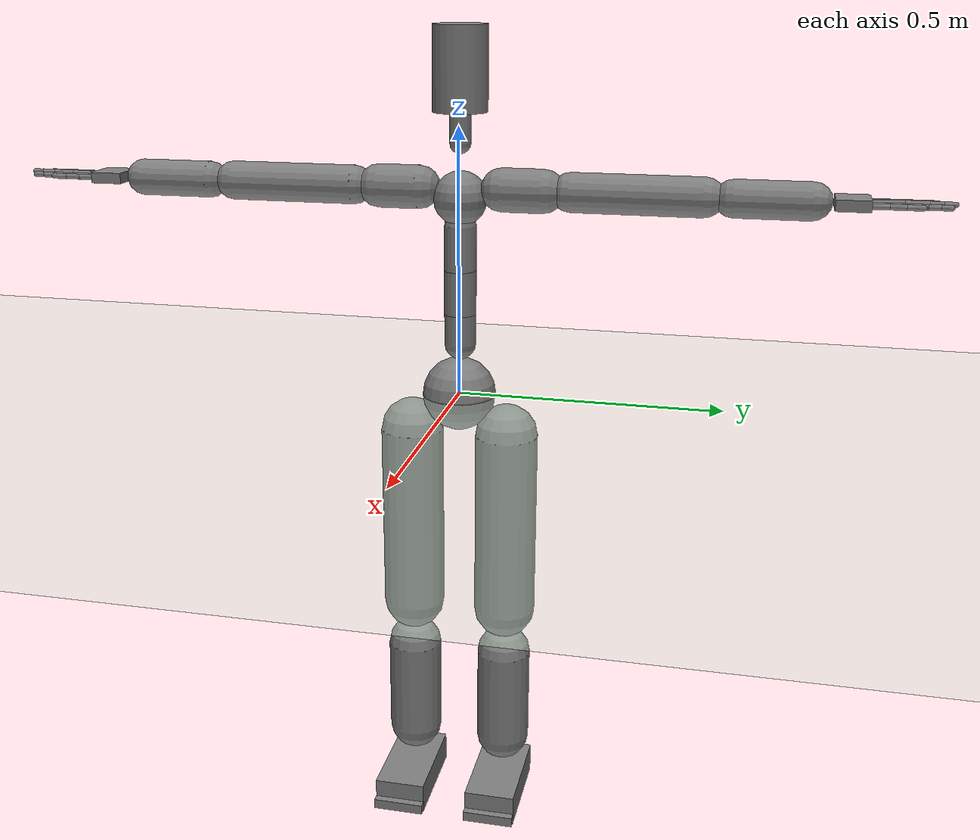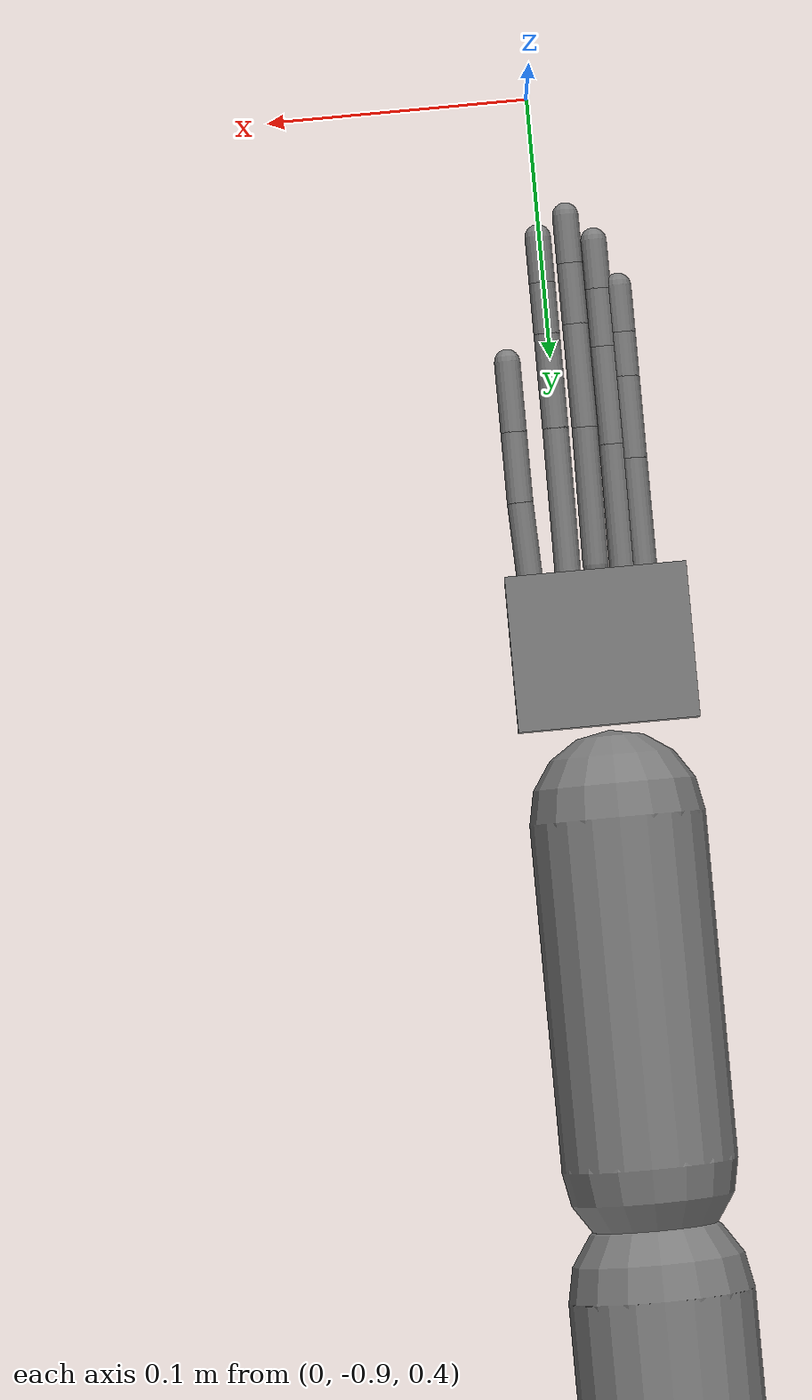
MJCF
<!-- change the damping from 50 to 500 -->
<mujoco model="humanoid">
  <compiler coordinate="local"/>
  <statistic extent="2" center="0 0 1"/>
  <option timestep="0.00555"/>
  <default>
    <motor ctrlrange="-1 1" ctrllimited="true"/>
    <geom type="capsule" condim="1" friction="1.0 0.05 0.05" solimp=".9 .99 .003" solref=".015 1"/>
    <joint type="hinge" damping="0.1" stiffness="5" armature=".007" limited="true" solimplimit="0 .99 .01"/>
    <site size=".04" group="3"/>
    <default class="force-torque">
      <site type="box" size=".01 .01 .02" rgba="1 0 0 1"/>
    </default>
    <default class="touch">
      <site type="capsule" rgba="0 0 1 .3"/>
    </default>
  </default>
  <asset>
    <texture type="skybox" builtin="gradient" rgb1=".4 .5 .6" rgb2="0 0 0" width="100" height="100"/>
    <texture builtin="flat" height="1278" mark="cross" markrgb="1 1 1" name="texgeom" random="0.01" rgb1="0.8 0.6 0.4" rgb2="0.8 0.6 0.4" type="cube" width="127"/>
    <texture builtin="checker" height="100" name="texplane" rgb1="0 0 0" rgb2="0.8 0.8 0.8" type="2d" width="100"/>
    <material name="MatPlane" reflectance="0.5" shininess="1" specular="1" texrepeat="60 60" texture="texplane"/>
    <material name="geom" texture="texgeom" texuniform="true"/>
  </asset>
  <worldbody>
    <light cutoff="100" diffuse="1 1 1" dir="-0 0 -1.3" directional="true" exponent="1" pos="0 0 1.3" specular=".1 .1 .1"/>
    <geom conaffinity="1" condim="3" name="floor" pos="0 0 0" rgba="0.8 0.9 0.8 1" size="100 100 .2" type="plane" material="MatPlane"/>
    <body name="pHipOrigin" pos="0 0 0">
      <freejoint name="pHipOrigin"/>
      <geom type="sphere" contype="1" conaffinity="1" density="4629.6296296296305" size="0.07011" pos="0.0000 0.0000 -0.0000"/>
      <body name="jL5S1" pos="-0.008516421404465561 0.0 0.0766475765284283">
        <geom type="capsule" contype="1" conaffinity="1" density="1000" fromto="0 0 0.02 0.0 0.0 0.07755035161972046" size="0.03"/>
        <joint name="jL5S1_x" type="hinge" pos="0 0 0" axis="1 0 0" stiffness="500" damping="500" armature="0.02" range="-180.0000 180.0000"/>
        <joint name="jL5S1_y" type="hinge" pos="0 0 0" axis="0 1 0" stiffness="500" damping="500" armature="0.02" range="-180.0000 180.0000"/>
        <joint name="jL5S1_z" type="hinge" pos="0 0 0" axis="0 0 1" stiffness="500" damping="500" armature="0.02" range="-180.0000 180.0000"/>
        <body name="jL4L3" pos="0.0 0.0 0.07755035161972046">
          <geom type="capsule" contype="1" conaffinity="1" density="1000" fromto="0 0 0 -0.0006374194169280187 0.0 0.08262085664436475" size="0.03"/>
          <joint name="jL4L3_x" type="hinge" pos="0 0 0" axis="1 0 0" stiffness="500" damping="500" armature="0.02" range="-180.0000 180.0000"/>
          <joint name="jL4L3_y" type="hinge" pos="0 0 0" axis="0 1 0" stiffness="500" damping="500" armature="0.02" range="-180.0000 180.0000"/>
          <joint name="jL4L3_z" type="hinge" pos="0 0 0" axis="0 0 1" stiffness="500" damping="500" armature="0.02" range="-180.0000 180.0000"/>
          <body name="jL1T12" pos="-0.0006374194169280187 0.0 0.08262085664436475">
            <geom type="capsule" contype="1" conaffinity="1" density="1000" fromto="0 0 0 -0.0006464134105831213 0.0 0.08362376992082679" size="0.03"/>
            <joint name="jL1T12_x" type="hinge" pos="0 0 0" axis="1 0 0" stiffness="500" damping="500" armature="0.02" range="-180.0000 180.0000"/>
            <joint name="jL1T12_y" type="hinge" pos="0 0 0" axis="0 1 0" stiffness="500" damping="500" armature="0.02" range="-180.0000 180.0000"/>
            <joint name="jL1T12_z" type="hinge" pos="0 0 0" axis="0 0 1" stiffness="500" damping="500" armature="0.02" range="-180.0000 180.0000"/>
            <body name="jT9T8" pos="-0.0006464134105831213 0.0 0.08362376992082679">
              <geom type="sphere" contype="1" conaffinity="1" density="1000" size="0.05011" pos="0.0000 0.0000 0.050000"/>
              <joint name="jT9T8_x" type="hinge" pos="0 0 0" axis="1 0 0" stiffness="500" damping="500" armature="0.02" range="-180.0000 180.0000"/>
              <joint name="jT9T8_y" type="hinge" pos="0 0 0" axis="0 1 0" stiffness="500" damping="500" armature="0.02" range="-180.0000 180.0000"/>
              <joint name="jT9T8_z" type="hinge" pos="0 0 0" axis="0 0 1" stiffness="500" damping="500" armature="0.02" range="-180.0000 180.0000"/>
              <body name="jT1C7" pos="0.0 0.0 0.11981400847434998">
                <geom type="capsule" contype="1" conaffinity="1" density="1000" fromto="0 0 0.03 0.000993035624965301 0.0 0.08417254270113383" size="0.02"/>
                <joint name="jT1C7_x" type="hinge" pos="0 0 0" axis="1 0 0" stiffness="500" damping="500" armature="0.02" range="-180.0000 180.0000"/>
                <joint name="jT1C7_y" type="hinge" pos="0 0 0" axis="0 1 0" stiffness="500" damping="500" armature="0.02" range="-180.0000 180.0000"/>
                <joint name="jT1C7_z" type="hinge" pos="0 0 0" axis="0 0 1" stiffness="500" damping="500" armature="0.02" range="-180.0000 180.0000"/>
                <body name="jC1Head" pos="0.000993035624965301 0.0 0.08417254270113383">
                  <geom type="cylinder" contype="1" conaffinity="1" density="1000" fromto="0 0 0 0 0 0.15" size="0.05"/>
                  <joint name="jC1Head_x" type="hinge" pos="0 0 0" axis="1 0 0" stiffness="500" damping="500" armature="0.02" range="-180.0000 180.0000"/>
                  <joint name="jC1Head_y" type="hinge" pos="0 0 0" axis="0 1 0" stiffness="500" damping="500" armature="0.02" range="-180.0000 180.0000"/>
                  <joint name="jC1Head_z" type="hinge" pos="0 0 0" axis="0 0 1" stiffness="500" damping="500" armature="0.02" range="-180.0000 180.0000"/>
                </body>
              </body>
              <body name="jRightT4Shoulder" pos="0.0 -0.027939024825593555 0.0681214746452578">
                <geom type="capsule" contype="1" conaffinity="1" density="1000" fromto="0 -0.05 0 0.0 -0.12468250095844269 0.0" size="0.04"/>
                <joint name="jRightT4Shoulder_x" type="hinge" pos="0 0 0" axis="1 0 0" stiffness="500" damping="500" armature="0.02" range="-180.0000 180.0000"/>
                <joint name="jRightT4Shoulder_y" type="hinge" pos="0 0 0" axis="0 1 0" stiffness="500" damping="500" armature="0.02" range="-180.0000 180.0000"/>
                <joint name="jRightT4Shoulder_z" type="hinge" pos="0 0 0" axis="0 0 1" stiffness="500" damping="500" armature="0.02" range="-180.0000 180.0000"/>
                <body name="jRightShoulder" pos="0.0 -0.12468250095844269 0.0">
                  <geom type="capsule" contype="1" conaffinity="1" density="1000" fromto="0 -0.05 0 0.0 -0.28514769673347473 0.0" size="0.036"/>
                  <joint name="jRightShoulder_x" type="hinge" pos="0 0 0" axis="1 0 0" stiffness="500" damping="500" armature="0.02" range="-180.0000 180.0000"/>
                  <joint name="jRightShoulder_y" type="hinge" pos="0 0 0" axis="0 1 0" stiffness="500" damping="500" armature="0.02" range="-180.0000 180.0000"/>
                  <joint name="jRightShoulder_z" type="hinge" pos="0 0 0" axis="0 0 1" stiffness="500" damping="500" armature="0.02" range="-180.0000 180.0000"/>
                  <body name="jRightElbow" pos="0.0 -0.28514769673347473 0.0">
                    <geom type="capsule" contype="1" conaffinity="1" density="1000" fromto="0 -0.05 0 0.00010069218417944148 -0.18417896837208908 0.0" size="0.034"/>
                    <joint name="jRightElbow_x" type="hinge" pos="0 0 0" axis="1 0 0" stiffness="500" damping="500" armature="0.02" range="-180.0000 180.0000"/>
                    <joint name="jRightElbow_y" type="hinge" pos="0 0 0" axis="0 1 0" stiffness="500" damping="500" armature="0.02" range="-180.0000 180.0000"/>
                    <joint name="jRightElbow_z" type="hinge" pos="0 0 0" axis="0 0 1" stiffness="500" damping="500" armature="0.02" range="-180.0000 180.0000"/>
                    <body name="jRightWrist" pos="0.00010069218417944148 -0.2501789683720891 0.0">
                      <geom density="1000" type="box" pos="0 0 0" size="0.035 0.03 0.01" quat="1.0 0 0 0"/>
                      <joint name="jRightWrist_x" type="hinge" pos="0 0 0" axis="1 0 0" stiffness="500" damping="500" armature="0.02" range="-180.0000 180.0000"/>
                      <joint name="jRightWrist_y" type="hinge" pos="0 0 0" axis="0 1 0" stiffness="500" damping="500" armature="0.02" range="-180.0000 180.0000"/>
                      <joint name="jRightWrist_z" type="hinge" pos="0 0 0" axis="0 0 1" stiffness="500" damping="500" armature="0.02" range="-180.0000 180.0000"/>
                      <body name="jRightFirstCMC" pos="0.025017587 -0.023980761 -0.0011329494">
                        <geom type="capsule" contype="1" conaffinity="1" density="1000" fromto="0 0 0 0.0012190858833491802 -0.034401796758174896 0.0007269077468663454" size="0.005"/>
                        <joint name="jRightFirstCMC_x" type="hinge" pos="0 0 0" axis="1 0 0" stiffness="500" damping="500" armature="0.02" range="-180.0000 180.0000"/>
                        <joint name="jRightFirstCMC_y" type="hinge" pos="0 0 0" axis="0 1 0" stiffness="500" damping="500" armature="0.02" range="-180.0000 180.0000"/>
                        <joint name="jRightFirstCMC_z" type="hinge" pos="0 0 0" axis="0 0 1" stiffness="500" damping="500" armature="0.02" range="-180.0000 180.0000"/>
                        <body name="jRightFirstMCP" pos="0.0012190859 -0.034401797 0.00072690775">
                          <geom type="capsule" contype="1" conaffinity="1" density="1000" fromto="0 0 0 0.0 -0.027401529252529144 0.0" size="0.005"/>
                          <joint name="jRightFirstMCP_x" type="hinge" pos="0 0 0" axis="1 0 0" stiffness="500" damping="500" armature="0.02" range="-180.0000 180.0000"/>
                          <joint name="jRightFirstMCP_y" type="hinge" pos="0 0 0" axis="0 1 0" stiffness="500" damping="500" armature="0.02" range="-180.0000 180.0000"/>
                          <joint name="jRightFirstMCP_z" type="hinge" pos="0 0 0" axis="0 0 1" stiffness="500" damping="500" armature="0.02" range="-180.0000 180.0000"/>
                          <body name="jRightIP" pos="0.0 -0.02740153 0.0">
                            <geom type="capsule" contype="1" conaffinity="1" density="1000" fromto="0 0 0 0.0 -0.027419358491897583 0.0" size="0.005"/>
                            <joint name="jRightIP_x" type="hinge" pos="0 0 0" axis="1 0 0" stiffness="500" damping="500" armature="0.02" range="-180.0000 180.0000"/>
                            <joint name="jRightIP_y" type="hinge" pos="0 0 0" axis="0 1 0" stiffness="500" damping="500" armature="0.02" range="-180.0000 180.0000"/>
                            <joint name="jRightIP_z" type="hinge" pos="0 0 0" axis="0 0 1" stiffness="500" damping="500" armature="0.02" range="-180.0000 180.0000"/>
                          </body>
                        </body>
                      </body>
                      <body name="jRightSecondCMC" pos="0.010381387 -0.030331125 -0.00052904844">
                        <geom type="capsule" contype="1" conaffinity="1" density="1000" fromto="0 0 0 -0.00034841737942770123 -0.055569957941770554 -0.0005764446686953306" size="0.005"/>
                        <joint name="jRightSecondCMC_x" type="hinge" pos="0 0 0" axis="1 0 0" stiffness="500" damping="500" armature="0.02" range="-180.0000 180.0000"/>
                        <joint name="jRightSecondCMC_y" type="hinge" pos="0 0 0" axis="0 1 0" stiffness="500" damping="500" armature="0.02" range="-180.0000 180.0000"/>
                        <joint name="jRightSecondCMC_z" type="hinge" pos="0 0 0" axis="0 0 1" stiffness="500" damping="500" armature="0.02" range="-180.0000 180.0000"/>
                        <body name="jRightSecondMCP" pos="-0.00034841738 -0.055569958 -0.00057644467">
                          <geom type="capsule" contype="1" conaffinity="1" density="1000" fromto="0 0 0 0.0 -0.03668946027755737 0.0" size="0.005"/>
                          <joint name="jRightSecondMCP_x" type="hinge" pos="0 0 0" axis="1 0 0" stiffness="500" damping="500" armature="0.02" range="-180.0000 180.0000"/>
                          <joint name="jRightSecondMCP_y" type="hinge" pos="0 0 0" axis="0 1 0" stiffness="500" damping="500" armature="0.02" range="-180.0000 180.0000"/>
                          <joint name="jRightSecondMCP_z" type="hinge" pos="0 0 0" axis="0 0 1" stiffness="500" damping="500" armature="0.02" range="-180.0000 180.0000"/>
                          <body name="jRightSecondPIP" pos="0.0 -0.03668946 0.0">
                            <geom type="capsule" contype="1" conaffinity="1" density="1000" fromto="0 0 0 0.0 -0.019924849271774292 0.0" size="0.005"/>
                            <joint name="jRightSecondPIP_x" type="hinge" pos="0 0 0" axis="1 0 0" stiffness="500" damping="500" armature="0.02" range="-180.0000 180.0000"/>
                            <joint name="jRightSecondPIP_y" type="hinge" pos="0 0 0" axis="0 1 0" stiffness="500" damping="500" armature="0.02" range="-180.0000 180.0000"/>
                            <joint name="jRightSecondPIP_z" type="hinge" pos="0 0 0" axis="0 0 1" stiffness="500" damping="500" armature="0.02" range="-180.0000 180.0000"/>
                            <body name="jRightSecondDIP" pos="0.0 -0.01992485 0.0">
                              <geom type="capsule" contype="1" conaffinity="1" density="1000" fromto="0 0 0 0.0 -0.017852455377578735 0.0" size="0.005"/>
                              <joint name="jRightSecondDIP_x" type="hinge" pos="0 0 0" axis="1 0 0" stiffness="500" damping="500" armature="0.02" range="-180.0000 180.0000"/>
                              <joint name="jRightSecondDIP_y" type="hinge" pos="0 0 0" axis="0 1 0" stiffness="500" damping="500" armature="0.02" range="-180.0000 180.0000"/>
                              <joint name="jRightSecondDIP_z" type="hinge" pos="0 0 0" axis="0 0 1" stiffness="500" damping="500" armature="0.02" range="-180.0000 180.0000"/>
                            </body>
                          </body>
                        </body>
                      </body>
                      <body name="jRightThirdCMC" pos="-0.00058932963 -0.031869587 0.0013398459">
                        <geom type="capsule" contype="1" conaffinity="1" density="1000" fromto="0 0 0 -0.0006422966835089028 -0.05321437865495682 0.001447758637368679" size="0.005"/>
                        <joint name="jRightThirdCMC_x" type="hinge" pos="0 0 0" axis="1 0 0" stiffness="500" damping="500" armature="0.02" range="-180.0000 180.0000"/>
                        <joint name="jRightThirdCMC_y" type="hinge" pos="0 0 0" axis="0 1 0" stiffness="500" damping="500" armature="0.02" range="-180.0000 180.0000"/>
                        <joint name="jRightThirdCMC_z" type="hinge" pos="0 0 0" axis="0 0 1" stiffness="500" damping="500" armature="0.02" range="-180.0000 180.0000"/>
                        <body name="jRightThirdMCP" pos="-0.0006422967 -0.05321438 0.0014477586">
                          <geom type="capsule" contype="1" conaffinity="1" density="1000" fromto="0 0 0 0.0 -0.039939187467098236 0.0" size="0.005"/>
                          <joint name="jRightThirdMCP_x" type="hinge" pos="0 0 0" axis="1 0 0" stiffness="500" damping="500" armature="0.02" range="-180.0000 180.0000"/>
                          <joint name="jRightThirdMCP_y" type="hinge" pos="0 0 0" axis="0 1 0" stiffness="500" damping="500" armature="0.02" range="-180.0000 180.0000"/>
                          <joint name="jRightThirdMCP_z" type="hinge" pos="0 0 0" axis="0 0 1" stiffness="500" damping="500" armature="0.02" range="-180.0000 180.0000"/>
                          <body name="jRightThirdPIP" pos="0.0 -0.039939187 0.0">
                            <geom type="capsule" contype="1" conaffinity="1" density="1000" fromto="0 0 0 0.0 -0.02361077070236206 0.0" size="0.005"/>
                            <joint name="jRightThirdPIP_x" type="hinge" pos="0 0 0" axis="1 0 0" stiffness="500" damping="500" armature="0.02" range="-180.0000 180.0000"/>
                            <joint name="jRightThirdPIP_y" type="hinge" pos="0 0 0" axis="0 1 0" stiffness="500" damping="500" armature="0.02" range="-180.0000 180.0000"/>
                            <joint name="jRightThirdPIP_z" type="hinge" pos="0 0 0" axis="0 0 1" stiffness="500" damping="500" armature="0.02" range="-180.0000 180.0000"/>
                            <body name="jRightThirdDIP" pos="0.0 -0.02361077 0.0">
                              <geom type="capsule" contype="1" conaffinity="1" density="1000" fromto="0 0 0 0.0 -0.0187528133392334 0.0" size="0.005"/>
                              <joint name="jRightThirdDIP_x" type="hinge" pos="0 0 0" axis="1 0 0" stiffness="500" damping="500" armature="0.02" range="-180.0000 180.0000"/>
                              <joint name="jRightThirdDIP_y" type="hinge" pos="0 0 0" axis="0 1 0" stiffness="500" damping="500" armature="0.02" range="-180.0000 180.0000"/>
                              <joint name="jRightThirdDIP_z" type="hinge" pos="0 0 0" axis="0 0 1" stiffness="500" damping="500" armature="0.02" range="-180.0000 180.0000"/>
                            </body>
                          </body>
                        </body>
                      </body>
                      <body name="jRightFourthCMC" pos="-0.010838733 -0.030187663 0.0007105703">
                        <geom type="capsule" contype="1" conaffinity="1" density="1000" fromto="0 0 0 -0.00034616925404407084 -0.0474458709359169 0.0007454122533090413" size="0.005"/>
                        <joint name="jRightFourthCMC_x" type="hinge" pos="0 0 0" axis="1 0 0" stiffness="500" damping="500" armature="0.02" range="-180.0000 180.0000"/>
                        <joint name="jRightFourthCMC_y" type="hinge" pos="0 0 0" axis="0 1 0" stiffness="500" damping="500" armature="0.02" range="-180.0000 180.0000"/>
                        <joint name="jRightFourthCMC_z" type="hinge" pos="0 0 0" axis="0 0 1" stiffness="500" damping="500" armature="0.02" range="-180.0000 180.0000"/>
                        <body name="jRightFourthMCP" pos="-0.00034616925 -0.04744587 0.00074541225">
                          <geom type="capsule" contype="1" conaffinity="1" density="1000" fromto="0 0 0 0.0 -0.037895575165748596 0.0" size="0.005"/>
                          <joint name="jRightFourthMCP_x" type="hinge" pos="0 0 0" axis="1 0 0" stiffness="500" damping="500" armature="0.02" range="-180.0000 180.0000"/>
                          <joint name="jRightFourthMCP_y" type="hinge" pos="0 0 0" axis="0 1 0" stiffness="500" damping="500" armature="0.02" range="-180.0000 180.0000"/>
                          <joint name="jRightFourthMCP_z" type="hinge" pos="0 0 0" axis="0 0 1" stiffness="500" damping="500" armature="0.02" range="-180.0000 180.0000"/>
                          <body name="jRightFourthPIP" pos="0.0 -0.037895575 0.0">
                            <geom type="capsule" contype="1" conaffinity="1" density="1000" fromto="0 0 0 0.0 -0.022440627217292786 0.0" size="0.005"/>
                            <joint name="jRightFourthPIP_x" type="hinge" pos="0 0 0" axis="1 0 0" stiffness="500" damping="500" armature="0.02" range="-180.0000 180.0000"/>
                            <joint name="jRightFourthPIP_y" type="hinge" pos="0 0 0" axis="0 1 0" stiffness="500" damping="500" armature="0.02" range="-180.0000 180.0000"/>
                            <joint name="jRightFourthPIP_z" type="hinge" pos="0 0 0" axis="0 0 1" stiffness="500" damping="500" armature="0.02" range="-180.0000 180.0000"/>
                            <body name="jRightFourthDIP" pos="0.0 -0.022440627 0.0">
                              <geom type="capsule" contype="1" conaffinity="1" density="1000" fromto="0 0 0 0.0 -0.018935352563858032 0.0" size="0.005"/>
                              <joint name="jRightFourthDIP_x" type="hinge" pos="0 0 0" axis="1 0 0" stiffness="500" damping="500" armature="0.02" range="-180.0000 180.0000"/>
                              <joint name="jRightFourthDIP_y" type="hinge" pos="0 0 0" axis="0 1 0" stiffness="500" damping="500" armature="0.02" range="-180.0000 180.0000"/>
                              <joint name="jRightFourthDIP_z" type="hinge" pos="0 0 0" axis="0 0 1" stiffness="500" damping="500" armature="0.02" range="-180.0000 180.0000"/>
                            </body>
                          </body>
                        </body>
                      </body>
                      <body name="jRightFifthCMC" pos="-0.019044166 -0.026535874 0.00052346755">
                        <geom type="capsule" contype="1" conaffinity="1" density="1000" fromto="0 0 0 -6.652534466411453e-06 -0.04503980651497841 0.0006198037299327552" size="0.005"/>
                        <joint name="jRightFifthCMC_x" type="hinge" pos="0 0 0" axis="1 0 0" stiffness="500" damping="500" armature="0.02" range="-180.0000 180.0000"/>
                        <joint name="jRightFifthCMC_y" type="hinge" pos="0 0 0" axis="0 1 0" stiffness="500" damping="500" armature="0.02" range="-180.0000 180.0000"/>
                        <joint name="jRightFifthCMC_z" type="hinge" pos="0 0 0" axis="0 0 1" stiffness="500" damping="500" armature="0.02" range="-180.0000 180.0000"/>
                        <body name="jRightFifthMCP" pos="-6.6525345e-06 -0.045039807 0.00061980373">
                          <geom type="capsule" contype="1" conaffinity="1" density="1000" fromto="0 0 0 0.0 -0.03164418786764145 0.0" size="0.005"/>
                          <joint name="jRightFifthMCP_x" type="hinge" pos="0 0 0" axis="1 0 0" stiffness="500" damping="500" armature="0.02" range="-180.0000 180.0000"/>
                          <joint name="jRightFifthMCP_y" type="hinge" pos="0 0 0" axis="0 1 0" stiffness="500" damping="500" armature="0.02" range="-180.0000 180.0000"/>
                          <joint name="jRightFifthMCP_z" type="hinge" pos="0 0 0" axis="0 0 1" stiffness="500" damping="500" armature="0.02" range="-180.0000 180.0000"/>
                          <body name="jRightFifthPIP" pos="0.0 -0.031644188 0.0">
                            <geom type="capsule" contype="1" conaffinity="1" density="1000" fromto="0 0 0 0.0 -0.017170600593090057 0.0" size="0.005"/>
                            <joint name="jRightFifthPIP_x" type="hinge" pos="0 0 0" axis="1 0 0" stiffness="500" damping="500" armature="0.02" range="-180.0000 180.0000"/>
                            <joint name="jRightFifthPIP_y" type="hinge" pos="0 0 0" axis="0 1 0" stiffness="500" damping="500" armature="0.02" range="-180.0000 180.0000"/>
                            <joint name="jRightFifthPIP_z" type="hinge" pos="0 0 0" axis="0 0 1" stiffness="500" damping="500" armature="0.02" range="-180.0000 180.0000"/>
                            <body name="jRightFifthDIP" pos="0.0 -0.0171706 0.0">
                              <geom type="capsule" contype="1" conaffinity="1" density="1000" fromto="0 0 0 0.0 -0.018215104937553406 0.0" size="0.005"/>
                              <joint name="jRightFifthDIP_x" type="hinge" pos="0 0 0" axis="1 0 0" stiffness="500" damping="500" armature="0.02" range="-180.0000 180.0000"/>
                              <joint name="jRightFifthDIP_y" type="hinge" pos="0 0 0" axis="0 1 0" stiffness="500" damping="500" armature="0.02" range="-180.0000 180.0000"/>
                              <joint name="jRightFifthDIP_z" type="hinge" pos="0 0 0" axis="0 0 1" stiffness="500" damping="500" armature="0.02" range="-180.0000 180.0000"/>
                            </body>
                          </body>
                        </body>
                      </body>
                    </body>
                  </body>
                </body>
              </body>
              <body name="jLeftT4Shoulder" pos="0.0 0.027902757132912747 0.06803304605038665">
                <geom type="capsule" contype="1" conaffinity="1" density="1000" fromto="0 0.05 0 0.0 0.12534131109714508 0.0" size="0.04"/>
                <joint name="jLeftT4Shoulder_x" type="hinge" pos="0 0 0" axis="1 0 0" stiffness="500" damping="500" armature="0.02" range="-180.0000 180.0000"/>
                <joint name="jLeftT4Shoulder_y" type="hinge" pos="0 0 0" axis="0 1 0" stiffness="500" damping="500" armature="0.02" range="-180.0000 180.0000"/>
                <joint name="jLeftT4Shoulder_z" type="hinge" pos="0 0 0" axis="0 0 1" stiffness="500" damping="500" armature="0.02" range="-180.0000 180.0000"/>
                <body name="jLeftShoulder" pos="0.0 0.12534131109714508 0.0">
                  <geom type="capsule" contype="1" conaffinity="1" density="1000" fromto="0 0.05 0 0.0 0.28614240884780884 0.0" size="0.036"/>
                  <joint name="jLeftShoulder_x" type="hinge" pos="0 0 0" axis="1 0 0" stiffness="500" damping="500" armature="0.02" range="-180.0000 180.0000"/>
                  <joint name="jLeftShoulder_y" type="hinge" pos="0 0 0" axis="0 1 0" stiffness="500" damping="500" armature="0.02" range="-180.0000 180.0000"/>
                  <joint name="jLeftShoulder_z" type="hinge" pos="0 0 0" axis="0 0 1" stiffness="500" damping="500" armature="0.02" range="-180.0000 180.0000"/>
                  <body name="jLeftElbow" pos="0.0 0.28614240884780884 0.0">
                    <geom type="capsule" contype="1" conaffinity="1" density="1000" fromto="0 0.05 0 0.00010069218417944148 0.18417896837208908 0.0" size="0.034"/>
                    <joint name="jLeftElbow_x" type="hinge" pos="0 0 0" axis="1 0 0" stiffness="500" damping="500" armature="0.02" range="-180.0000 180.0000"/>
                    <joint name="jLeftElbow_y" type="hinge" pos="0 0 0" axis="0 1 0" stiffness="500" damping="500" armature="0.02" range="-180.0000 180.0000"/>
                    <joint name="jLeftElbow_z" type="hinge" pos="0 0 0" axis="0 0 1" stiffness="500" damping="500" armature="0.02" range="-180.0000 180.0000"/>
                    <body name="jLeftWrist" pos="0.00010069218417944148 0.2501789683720891 0.0">
                      <geom density="1000" type="box" pos="0 0 0" size="0.035 0.03 0.01" quat="1.0 0 0 0"/>
                      <joint name="jLeftWrist_x" type="hinge" pos="0 0 0" axis="1 0 0" stiffness="500" damping="500" armature="0.02" range="-180.0000 180.0000"/>
                      <joint name="jLeftWrist_y" type="hinge" pos="0 0 0" axis="0 1 0" stiffness="500" damping="500" armature="0.02" range="-180.0000 180.0000"/>
                      <joint name="jLeftWrist_z" type="hinge" pos="0 0 0" axis="0 0 1" stiffness="500" damping="500" armature="0.02" range="-180.0000 180.0000"/>
                      <body name="jLeftFirstCMC" pos="0.024486324 0.024544151 -0.0010959272">
                        <geom type="capsule" contype="1" conaffinity="1" density="1000" fromto="0 0 0 0.00120734260417521 0.034401025623083115 0.000708399573341012" size="0.005"/>
                        <joint name="jLeftFirstCMC_x" type="hinge" pos="0 0 0" axis="1 0 0" stiffness="500" damping="500" armature="0.02" range="-180.0000 180.0000"/>
                        <joint name="jLeftFirstCMC_y" type="hinge" pos="0 0 0" axis="0 1 0" stiffness="500" damping="500" armature="0.02" range="-180.0000 180.0000"/>
                        <joint name="jLeftFirstCMC_z" type="hinge" pos="0 0 0" axis="0 0 1" stiffness="500" damping="500" armature="0.02" range="-180.0000 180.0000"/>
                        <body name="jLeftFirstMCP" pos="0.0012073426 0.034401026 0.0007083996">
                          <geom type="capsule" contype="1" conaffinity="1" density="1000" fromto="0 0 0 0.0 0.027401529252529144 0.0" size="0.005"/>
                          <joint name="jLeftFirstMCP_x" type="hinge" pos="0 0 0" axis="1 0 0" stiffness="500" damping="500" armature="0.02" range="-180.0000 180.0000"/>
                          <joint name="jLeftFirstMCP_y" type="hinge" pos="0 0 0" axis="0 1 0" stiffness="500" damping="500" armature="0.02" range="-180.0000 180.0000"/>
                          <joint name="jLeftFirstMCP_z" type="hinge" pos="0 0 0" axis="0 0 1" stiffness="500" damping="500" armature="0.02" range="-180.0000 180.0000"/>
                          <body name="jLeftIP" pos="0.0 0.02740153 0.0">
                            <geom type="capsule" contype="1" conaffinity="1" density="1000" fromto="0 0 0 0.0 0.027419358491897583 0.0" size="0.005"/>
                            <joint name="jLeftIP_x" type="hinge" pos="0 0 0" axis="1 0 0" stiffness="500" damping="500" armature="0.02" range="-180.0000 180.0000"/>
                            <joint name="jLeftIP_y" type="hinge" pos="0 0 0" axis="0 1 0" stiffness="500" damping="500" armature="0.02" range="-180.0000 180.0000"/>
                            <joint name="jLeftIP_z" type="hinge" pos="0 0 0" axis="0 0 1" stiffness="500" damping="500" armature="0.02" range="-180.0000 180.0000"/>
                          </body>
                        </body>
                      </body>
                      <body name="jLeftSecondCMC" pos="0.010500962 0.030275317 -0.0005334173">
                        <geom type="capsule" contype="1" conaffinity="1" density="1000" fromto="0 0 0 -0.00030379689997062087 0.05557109788060188 -0.0005835657357238233" size="0.005"/>
                        <joint name="jLeftSecondCMC_x" type="hinge" pos="0 0 0" axis="1 0 0" stiffness="500" damping="500" armature="0.02" range="-180.0000 180.0000"/>
                        <joint name="jLeftSecondCMC_y" type="hinge" pos="0 0 0" axis="0 1 0" stiffness="500" damping="500" armature="0.02" range="-180.0000 180.0000"/>
                        <joint name="jLeftSecondCMC_z" type="hinge" pos="0 0 0" axis="0 0 1" stiffness="500" damping="500" armature="0.02" range="-180.0000 180.0000"/>
                        <body name="jLeftSecondMCP" pos="-0.0003037969 0.055571098 -0.00058356574">
                          <geom type="capsule" contype="1" conaffinity="1" density="1000" fromto="0 0 0 0.0 0.03668946027755737 0.0" size="0.005"/>
                          <joint name="jLeftSecondMCP_x" type="hinge" pos="0 0 0" axis="1 0 0" stiffness="500" damping="500" armature="0.02" range="-180.0000 180.0000"/>
                          <joint name="jLeftSecondMCP_y" type="hinge" pos="0 0 0" axis="0 1 0" stiffness="500" damping="500" armature="0.02" range="-180.0000 180.0000"/>
                          <joint name="jLeftSecondMCP_z" type="hinge" pos="0 0 0" axis="0 0 1" stiffness="500" damping="500" armature="0.02" range="-180.0000 180.0000"/>
                          <body name="jLeftSecondPIP" pos="0.0 0.03668946 0.0">
                            <geom type="capsule" contype="1" conaffinity="1" density="1000" fromto="0 0 0 0.0 0.019924849271774292 0.0" size="0.005"/>
                            <joint name="jLeftSecondPIP_x" type="hinge" pos="0 0 0" axis="1 0 0" stiffness="500" damping="500" armature="0.02" range="-180.0000 180.0000"/>
                            <joint name="jLeftSecondPIP_y" type="hinge" pos="0 0 0" axis="0 1 0" stiffness="500" damping="500" armature="0.02" range="-180.0000 180.0000"/>
                            <joint name="jLeftSecondPIP_z" type="hinge" pos="0 0 0" axis="0 0 1" stiffness="500" damping="500" armature="0.02" range="-180.0000 180.0000"/>
                            <body name="jLeftSecondDIP" pos="0.0 0.01992485 0.0">
                              <geom type="capsule" contype="1" conaffinity="1" density="1000" fromto="0 0 0 0.0 0.017852455377578735 0.0" size="0.005"/>
                              <joint name="jLeftSecondDIP_x" type="hinge" pos="0 0 0" axis="1 0 0" stiffness="500" damping="500" armature="0.02" range="-180.0000 180.0000"/>
                              <joint name="jLeftSecondDIP_y" type="hinge" pos="0 0 0" axis="0 1 0" stiffness="500" damping="500" armature="0.02" range="-180.0000 180.0000"/>
                              <joint name="jLeftSecondDIP_z" type="hinge" pos="0 0 0" axis="0 0 1" stiffness="500" damping="500" armature="0.02" range="-180.0000 180.0000"/>
                            </body>
                          </body>
                        </body>
                      </body>
                      <body name="jLeftThirdCMC" pos="-0.0005927895 0.03187245 0.0012951839">
                        <geom type="capsule" contype="1" conaffinity="1" density="1000" fromto="0 0 0 -0.0006474810070358217 0.05321541056036949 0.0014186531770974398" size="0.005"/>
                        <joint name="jLeftThirdCMC_x" type="hinge" pos="0 0 0" axis="1 0 0" stiffness="500" damping="500" armature="0.02" range="-180.0000 180.0000"/>
                        <joint name="jLeftThirdCMC_y" type="hinge" pos="0 0 0" axis="0 1 0" stiffness="500" damping="500" armature="0.02" range="-180.0000 180.0000"/>
                        <joint name="jLeftThirdCMC_z" type="hinge" pos="0 0 0" axis="0 0 1" stiffness="500" damping="500" armature="0.02" range="-180.0000 180.0000"/>
                        <body name="jLeftThirdMCP" pos="-0.000647481 0.05321541 0.0014186532">
                          <geom type="capsule" contype="1" conaffinity="1" density="1000" fromto="0 0 0 0.0 0.039939187467098236 0.0" size="0.005"/>
                          <joint name="jLeftThirdMCP_x" type="hinge" pos="0 0 0" axis="1 0 0" stiffness="500" damping="500" armature="0.02" range="-180.0000 180.0000"/>
                          <joint name="jLeftThirdMCP_y" type="hinge" pos="0 0 0" axis="0 1 0" stiffness="500" damping="500" armature="0.02" range="-180.0000 180.0000"/>
                          <joint name="jLeftThirdMCP_z" type="hinge" pos="0 0 0" axis="0 0 1" stiffness="500" damping="500" armature="0.02" range="-180.0000 180.0000"/>
                          <body name="jLeftThirdPIP" pos="0.0 0.039939187 0.0">
                            <geom type="capsule" contype="1" conaffinity="1" density="1000" fromto="0 0 0 0.0 0.02361077070236206 0.0" size="0.005"/>
                            <joint name="jLeftThirdPIP_x" type="hinge" pos="0 0 0" axis="1 0 0" stiffness="500" damping="500" armature="0.02" range="-180.0000 180.0000"/>
                            <joint name="jLeftThirdPIP_y" type="hinge" pos="0 0 0" axis="0 1 0" stiffness="500" damping="500" armature="0.02" range="-180.0000 180.0000"/>
                            <joint name="jLeftThirdPIP_z" type="hinge" pos="0 0 0" axis="0 0 1" stiffness="500" damping="500" armature="0.02" range="-180.0000 180.0000"/>
                            <body name="jLeftThirdDIP" pos="0.0 0.02361077 0.0">
                              <geom type="capsule" contype="1" conaffinity="1" density="1000" fromto="0 0 0 0.0 0.0187528133392334 0.0" size="0.005"/>
                              <joint name="jLeftThirdDIP_x" type="hinge" pos="0 0 0" axis="1 0 0" stiffness="500" damping="500" armature="0.02" range="-180.0000 180.0000"/>
                              <joint name="jLeftThirdDIP_y" type="hinge" pos="0 0 0" axis="0 1 0" stiffness="500" damping="500" armature="0.02" range="-180.0000 180.0000"/>
                              <joint name="jLeftThirdDIP_z" type="hinge" pos="0 0 0" axis="0 0 1" stiffness="500" damping="500" armature="0.02" range="-180.0000 180.0000"/>
                            </body>
                          </body>
                        </body>
                      </body>
                      <body name="jLeftFourthCMC" pos="-0.011236443 0.03003325 0.000758527">
                        <geom type="capsule" contype="1" conaffinity="1" density="1000" fromto="0 0 0 -0.00037227297434583306 0.04744315519928932 0.0007883592043071985" size="0.005"/>
                        <joint name="jLeftFourthCMC_x" type="hinge" pos="0 0 0" axis="1 0 0" stiffness="500" damping="500" armature="0.02" range="-180.0000 180.0000"/>
                        <joint name="jLeftFourthCMC_y" type="hinge" pos="0 0 0" axis="0 1 0" stiffness="500" damping="500" armature="0.02" range="-180.0000 180.0000"/>
                        <joint name="jLeftFourthCMC_z" type="hinge" pos="0 0 0" axis="0 0 1" stiffness="500" damping="500" armature="0.02" range="-180.0000 180.0000"/>
                        <body name="jLeftFourthMCP" pos="-0.00037227297 0.047443155 0.0007883592">
                          <geom type="capsule" contype="1" conaffinity="1" density="1000" fromto="0 0 0 0.0 0.037895575165748596 0.0" size="0.005"/>
                          <joint name="jLeftFourthMCP_x" type="hinge" pos="0 0 0" axis="1 0 0" stiffness="500" damping="500" armature="0.02" range="-180.0000 180.0000"/>
                          <joint name="jLeftFourthMCP_y" type="hinge" pos="0 0 0" axis="0 1 0" stiffness="500" damping="500" armature="0.02" range="-180.0000 180.0000"/>
                          <joint name="jLeftFourthMCP_z" type="hinge" pos="0 0 0" axis="0 0 1" stiffness="500" damping="500" armature="0.02" range="-180.0000 180.0000"/>
                          <body name="jLeftFourthPIP" pos="0.0 0.037895575 0.0">
                            <geom type="capsule" contype="1" conaffinity="1" density="1000" fromto="0 0 0 0.0 0.022440627217292786 0.0" size="0.005"/>
                            <joint name="jLeftFourthPIP_x" type="hinge" pos="0 0 0" axis="1 0 0" stiffness="500" damping="500" armature="0.02" range="-180.0000 180.0000"/>
                            <joint name="jLeftFourthPIP_y" type="hinge" pos="0 0 0" axis="0 1 0" stiffness="500" damping="500" armature="0.02" range="-180.0000 180.0000"/>
                            <joint name="jLeftFourthPIP_z" type="hinge" pos="0 0 0" axis="0 0 1" stiffness="500" damping="500" armature="0.02" range="-180.0000 180.0000"/>
                            <body name="jLeftFourthDIP" pos="0.0 0.022440627 0.0">
                              <geom type="capsule" contype="1" conaffinity="1" density="1000" fromto="0 0 0 0.0 0.018935352563858032 0.0" size="0.005"/>
                              <joint name="jLeftFourthDIP_x" type="hinge" pos="0 0 0" axis="1 0 0" stiffness="500" damping="500" armature="0.02" range="-180.0000 180.0000"/>
                              <joint name="jLeftFourthDIP_y" type="hinge" pos="0 0 0" axis="0 1 0" stiffness="500" damping="500" armature="0.02" range="-180.0000 180.0000"/>
                              <joint name="jLeftFourthDIP_z" type="hinge" pos="0 0 0" axis="0 0 1" stiffness="500" damping="500" armature="0.02" range="-180.0000 180.0000"/>
                            </body>
                          </body>
                        </body>
                      </body>
                      <body name="jLeftFifthCMC" pos="-0.019621087 0.026116364 0.00053188147">
                        <geom type="capsule" contype="1" conaffinity="1" density="1000" fromto="0 0 0 -1.277313094760757e-05 0.045038577169179916 0.000648076762445271" size="0.005"/>
                        <joint name="jLeftFifthCMC_x" type="hinge" pos="0 0 0" axis="1 0 0" stiffness="500" damping="500" armature="0.02" range="-180.0000 180.0000"/>
                        <joint name="jLeftFifthCMC_y" type="hinge" pos="0 0 0" axis="0 1 0" stiffness="500" damping="500" armature="0.02" range="-180.0000 180.0000"/>
                        <joint name="jLeftFifthCMC_z" type="hinge" pos="0 0 0" axis="0 0 1" stiffness="500" damping="500" armature="0.02" range="-180.0000 180.0000"/>
                        <body name="jLeftFifthMCP" pos="-1.2773131e-05 0.045038577 0.00064807676">
                          <geom type="capsule" contype="1" conaffinity="1" density="1000" fromto="0 0 0 0.0 0.03164418786764145 0.0" size="0.005"/>
                          <joint name="jLeftFifthMCP_x" type="hinge" pos="0 0 0" axis="1 0 0" stiffness="500" damping="500" armature="0.02" range="-180.0000 180.0000"/>
                          <joint name="jLeftFifthMCP_y" type="hinge" pos="0 0 0" axis="0 1 0" stiffness="500" damping="500" armature="0.02" range="-180.0000 180.0000"/>
                          <joint name="jLeftFifthMCP_z" type="hinge" pos="0 0 0" axis="0 0 1" stiffness="500" damping="500" armature="0.02" range="-180.0000 180.0000"/>
                          <body name="jLeftFifthPIP" pos="0.0 0.031644188 0.0">
                            <geom type="capsule" contype="1" conaffinity="1" density="1000" fromto="0 0 0 0.0 0.017170600593090057 0.0" size="0.005"/>
                            <joint name="jLeftFifthPIP_x" type="hinge" pos="0 0 0" axis="1 0 0" stiffness="500" damping="500" armature="0.02" range="-180.0000 180.0000"/>
                            <joint name="jLeftFifthPIP_y" type="hinge" pos="0 0 0" axis="0 1 0" stiffness="500" damping="500" armature="0.02" range="-180.0000 180.0000"/>
                            <joint name="jLeftFifthPIP_z" type="hinge" pos="0 0 0" axis="0 0 1" stiffness="500" damping="500" armature="0.02" range="-180.0000 180.0000"/>
                            <body name="jLeftFifthDIP" pos="0.0 0.0171706 0.0">
                              <geom type="capsule" contype="1" conaffinity="1" density="1000" fromto="0 0 0 0.0 0.018215104937553406 0.0" size="0.005"/>
                              <joint name="jLeftFifthDIP_x" type="hinge" pos="0 0 0" axis="1 0 0" stiffness="500" damping="500" armature="0.02" range="-180.0000 180.0000"/>
                              <joint name="jLeftFifthDIP_y" type="hinge" pos="0 0 0" axis="0 1 0" stiffness="500" damping="500" armature="0.02" range="-180.0000 180.0000"/>
                              <joint name="jLeftFifthDIP_z" type="hinge" pos="0 0 0" axis="0 0 1" stiffness="500" damping="500" armature="0.02" range="-180.0000 180.0000"/>
                            </body>
                          </body>
                        </body>
                      </body>
                    </body>
                  </body>
                </body>
              </body>
            </body>
          </body>
        </body>
      </body>
      <body name="jRightHip" pos="-0.00015885590703170824 -0.09427283499533458 0.0014300904523514772">
        <geom type="capsule" contype="1" conaffinity="1" density="2040.816327" fromto="0 0 -0.08 5.3624415358087944e-05 0.0 -0.44974931694554227" size="0.0605"/>
        <joint name="jRightHip_x" type="hinge" pos="0 0 0" axis="1 0 0" stiffness="500" damping="500" armature="0.02" range="-180.0000 180.0000"/>
        <joint name="jRightHip_y" type="hinge" pos="0 0 0" axis="0 1 0" stiffness="500" damping="500" armature="0.02" range="-180.0000 180.0000"/>
        <joint name="jRightHip_z" type="hinge" pos="0 0 0" axis="0 0 1" stiffness="500" damping="500" armature="0.02" range="-180.0000 180.0000"/>
        <body name="jRightKnee" pos="5.3624415358087944e-05 0.0 -0.44974931694554227">
          <geom type="capsule" contype="1" conaffinity="1" density="1234.567901" fromto="0 0 -0.1 0.0004042765654891717 0.0 -0.2940378622598712" size="0.0533"/>
          <joint name="jRightKnee_x" type="hinge" pos="0 0 0" axis="1 0 0" stiffness="500" damping="500" armature="0.02" range="-180.0000 180.0000"/>
          <joint name="jRightKnee_y" type="hinge" pos="0 0 0" axis="0 1 0" stiffness="500" damping="500" armature="0.02" range="-180.0000 180.0000"/>
          <joint name="jRightKnee_z" type="hinge" pos="0 0 0" axis="0 0 1" stiffness="500" damping="500" armature="0.02" range="-180.0000 180.0000"/>
          <body name="jRightAnkle" pos="0.0004042765654891717 0.0 -0.3580378622598712">
            <geom density="1000" type="box" pos="0.04 0 -0.03" size="0.1 0.05 0.03" quat="1.0 0 0 0"/>
            <joint name="jRightAnkle_x" type="hinge" pos="0 0 0" axis="1 0 0" stiffness="500" damping="500" armature="0.02" range="-180.0000 180.0000"/>
            <joint name="jRightAnkle_y" type="hinge" pos="0 0 0" axis="0 1 0" stiffness="500" damping="500" armature="0.02" range="-180.0000 180.0000"/>
            <joint name="jRightAnkle_z" type="hinge" pos="0 0 0" axis="0 0 1" stiffness="500" damping="500" armature="0.02" range="-180.0000 180.0000"/>
            <body name="jRightBallFoot" pos="0.14477892398315842 0.0 -0.06641893003272599">
              <geom density="1000" type="box" pos="0 0 0.02" size="0.01 0.05 0.01" quat="1.0 0 0 0"/>
              <joint name="jRightBallFoot_x" type="hinge" pos="0 0 0" axis="1 0 0" stiffness="500" damping="500" armature="0.02" range="-180.0000 180.0000"/>
              <joint name="jRightBallFoot_y" type="hinge" pos="0 0 0" axis="0 1 0" stiffness="500" damping="500" armature="0.02" range="-180.0000 180.0000"/>
              <joint name="jRightBallFoot_z" type="hinge" pos="0 0 0" axis="0 0 1" stiffness="500" damping="500" armature="0.02" range="-180.0000 180.0000"/>
            </body>
          </body>
        </body>
      </body>
      <body name="jLeftHip" pos="-0.0001551185973629522 0.09325688845898884 0.0013959675888677787">
        <geom type="capsule" contype="1" conaffinity="1" density="2040.816327" fromto="0 0 -0.08 5.362796163548417e-05 0.0 -0.4497790596630339" size="0.0605"/>
        <joint name="jLeftHip_x" type="hinge" pos="0 0 0" axis="1 0 0" stiffness="500" damping="500" armature="0.02" range="-180.0000 180.0000"/>
        <joint name="jLeftHip_y" type="hinge" pos="0 0 0" axis="0 1 0" stiffness="500" damping="500" armature="0.02" range="-180.0000 180.0000"/>
        <joint name="jLeftHip_z" type="hinge" pos="0 0 0" axis="0 0 1" stiffness="500" damping="500" armature="0.02" range="-180.0000 180.0000"/>
        <body name="jLeftKnee" pos="5.362796163548417e-05 0.0 -0.4497790596630339">
          <geom type="capsule" contype="1" conaffinity="1" density="1234.567901" fromto="0 0 -0.1 0.0004042765654891717 0.0 -0.2940378622598712" size="0.0533"/>
          <joint name="jLeftKnee_x" type="hinge" pos="0 0 0" axis="1 0 0" stiffness="500" damping="500" armature="0.02" range="-180.0000 180.0000"/>
          <joint name="jLeftKnee_y" type="hinge" pos="0 0 0" axis="0 1 0" stiffness="500" damping="500" armature="0.02" range="-180.0000 180.0000"/>
          <joint name="jLeftKnee_z" type="hinge" pos="0 0 0" axis="0 0 1" stiffness="500" damping="500" armature="0.02" range="-180.0000 180.0000"/>
          <body name="jLeftAnkle" pos="0.0004042765654891717 0.0 -0.3580378622598712">
            <geom density="1000" type="box" pos="0.04 0 -0.03" size="0.1 0.05 0.03" quat="1.0 0 0 0"/>
            <joint name="jLeftAnkle_x" type="hinge" pos="0 0 0" axis="1 0 0" stiffness="500" damping="500" armature="0.02" range="-180.0000 180.0000"/>
            <joint name="jLeftAnkle_y" type="hinge" pos="0 0 0" axis="0 1 0" stiffness="500" damping="500" armature="0.02" range="-180.0000 180.0000"/>
            <joint name="jLeftAnkle_z" type="hinge" pos="0 0 0" axis="0 0 1" stiffness="500" damping="500" armature="0.02" range="-180.0000 180.0000"/>
            <body name="jLeftBallFoot" pos="0.14477893752521737 0.0 -0.06641893624529506">
              <geom density="1000" type="box" pos="0 0 0.02" size="0.01 0.05 0.01" quat="1.0 0 0 0"/>
              <joint name="jLeftBallFoot_x" type="hinge" pos="0 0 0" axis="1 0 0" stiffness="500" damping="500" armature="0.02" range="-180.0000 180.0000"/>
              <joint name="jLeftBallFoot_y" type="hinge" pos="0 0 0" axis="0 1 0" stiffness="500" damping="500" armature="0.02" range="-180.0000 180.0000"/>
              <joint name="jLeftBallFoot_z" type="hinge" pos="0 0 0" axis="0 0 1" stiffness="500" damping="500" armature="0.02" range="-180.0000 180.0000"/>
            </body>
          </body>
        </body>
      </body>
    </body>
  </worldbody>
  <actuator>
    <motor name="jL5S1_x" joint="jL5S1_x" gear="500"/>
    <motor name="jL5S1_y" joint="jL5S1_y" gear="500"/>
    <motor name="jL5S1_z" joint="jL5S1_z" gear="500"/>
    <motor name="jRightHip_x" joint="jRightHip_x" gear="500"/>
    <motor name="jRightHip_y" joint="jRightHip_y" gear="500"/>
    <motor name="jRightHip_z" joint="jRightHip_z" gear="500"/>
    <motor name="jLeftHip_x" joint="jLeftHip_x" gear="500"/>
    <motor name="jLeftHip_y" joint="jLeftHip_y" gear="500"/>
    <motor name="jLeftHip_z" joint="jLeftHip_z" gear="500"/>
    <motor name="jL4L3_x" joint="jL4L3_x" gear="500"/>
    <motor name="jL4L3_y" joint="jL4L3_y" gear="500"/>
    <motor name="jL4L3_z" joint="jL4L3_z" gear="500"/>
    <motor name="jL1T12_x" joint="jL1T12_x" gear="500"/>
    <motor name="jL1T12_y" joint="jL1T12_y" gear="500"/>
    <motor name="jL1T12_z" joint="jL1T12_z" gear="500"/>
    <motor name="jT9T8_x" joint="jT9T8_x" gear="500"/>
    <motor name="jT9T8_y" joint="jT9T8_y" gear="500"/>
    <motor name="jT9T8_z" joint="jT9T8_z" gear="500"/>
    <motor name="jT1C7_x" joint="jT1C7_x" gear="500"/>
    <motor name="jT1C7_y" joint="jT1C7_y" gear="500"/>
    <motor name="jT1C7_z" joint="jT1C7_z" gear="500"/>
    <motor name="jRightT4Shoulder_x" joint="jRightT4Shoulder_x" gear="500"/>
    <motor name="jRightT4Shoulder_y" joint="jRightT4Shoulder_y" gear="500"/>
    <motor name="jRightT4Shoulder_z" joint="jRightT4Shoulder_z" gear="500"/>
    <motor name="jLeftT4Shoulder_x" joint="jLeftT4Shoulder_x" gear="500"/>
    <motor name="jLeftT4Shoulder_y" joint="jLeftT4Shoulder_y" gear="500"/>
    <motor name="jLeftT4Shoulder_z" joint="jLeftT4Shoulder_z" gear="500"/>
    <motor name="jC1Head_x" joint="jC1Head_x" gear="500"/>
    <motor name="jC1Head_y" joint="jC1Head_y" gear="500"/>
    <motor name="jC1Head_z" joint="jC1Head_z" gear="500"/>
    <motor name="jRightShoulder_x" joint="jRightShoulder_x" gear="500"/>
    <motor name="jRightShoulder_y" joint="jRightShoulder_y" gear="500"/>
    <motor name="jRightShoulder_z" joint="jRightShoulder_z" gear="500"/>
    <motor name="jRightElbow_x" joint="jRightElbow_x" gear="500"/>
    <motor name="jRightElbow_y" joint="jRightElbow_y" gear="500"/>
    <motor name="jRightElbow_z" joint="jRightElbow_z" gear="500"/>
    <motor name="jRightWrist_x" joint="jRightWrist_x" gear="500"/>
    <motor name="jRightWrist_y" joint="jRightWrist_y" gear="500"/>
    <motor name="jRightWrist_z" joint="jRightWrist_z" gear="500"/>
    <motor name="jLeftShoulder_x" joint="jLeftShoulder_x" gear="500"/>
    <motor name="jLeftShoulder_y" joint="jLeftShoulder_y" gear="500"/>
    <motor name="jLeftShoulder_z" joint="jLeftShoulder_z" gear="500"/>
    <motor name="jLeftElbow_x" joint="jLeftElbow_x" gear="500"/>
    <motor name="jLeftElbow_y" joint="jLeftElbow_y" gear="500"/>
    <motor name="jLeftElbow_z" joint="jLeftElbow_z" gear="500"/>
    <motor name="jLeftWrist_x" joint="jLeftWrist_x" gear="500"/>
    <motor name="jLeftWrist_y" joint="jLeftWrist_y" gear="500"/>
    <motor name="jLeftWrist_z" joint="jLeftWrist_z" gear="500"/>
    <motor name="jRightKnee_x" joint="jRightKnee_x" gear="500"/>
    <motor name="jRightKnee_y" joint="jRightKnee_y" gear="500"/>
    <motor name="jRightKnee_z" joint="jRightKnee_z" gear="500"/>
    <motor name="jRightAnkle_x" joint="jRightAnkle_x" gear="500"/>
    <motor name="jRightAnkle_y" joint="jRightAnkle_y" gear="500"/>
    <motor name="jRightAnkle_z" joint="jRightAnkle_z" gear="500"/>
    <motor name="jRightBallFoot_x" joint="jRightBallFoot_x" gear="500"/>
    <motor name="jRightBallFoot_y" joint="jRightBallFoot_y" gear="500"/>
    <motor name="jRightBallFoot_z" joint="jRightBallFoot_z" gear="500"/>
    <motor name="jLeftKnee_x" joint="jLeftKnee_x" gear="500"/>
    <motor name="jLeftKnee_y" joint="jLeftKnee_y" gear="500"/>
    <motor name="jLeftKnee_z" joint="jLeftKnee_z" gear="500"/>
    <motor name="jLeftAnkle_x" joint="jLeftAnkle_x" gear="500"/>
    <motor name="jLeftAnkle_y" joint="jLeftAnkle_y" gear="500"/>
    <motor name="jLeftAnkle_z" joint="jLeftAnkle_z" gear="500"/>
    <motor name="jLeftBallFoot_x" joint="jLeftBallFoot_x" gear="500"/>
    <motor name="jLeftBallFoot_y" joint="jLeftBallFoot_y" gear="500"/>
    <motor name="jLeftBallFoot_z" joint="jLeftBallFoot_z" gear="500"/>
    <motor name="jLeftFirstCMC_x" joint="jLeftFirstCMC_x" gear="500"/>
    <motor name="jLeftFirstCMC_y" joint="jLeftFirstCMC_y" gear="500"/>
    <motor name="jLeftFirstCMC_z" joint="jLeftFirstCMC_z" gear="500"/>
    <motor name="jLeftSecondCMC_x" joint="jLeftSecondCMC_x" gear="500"/>
    <motor name="jLeftSecondCMC_y" joint="jLeftSecondCMC_y" gear="500"/>
    <motor name="jLeftSecondCMC_z" joint="jLeftSecondCMC_z" gear="500"/>
    <motor name="jLeftThirdCMC_x" joint="jLeftThirdCMC_x" gear="500"/>
    <motor name="jLeftThirdCMC_y" joint="jLeftThirdCMC_y" gear="500"/>
    <motor name="jLeftThirdCMC_z" joint="jLeftThirdCMC_z" gear="500"/>
    <motor name="jLeftFourthCMC_x" joint="jLeftFourthCMC_x" gear="500"/>
    <motor name="jLeftFourthCMC_y" joint="jLeftFourthCMC_y" gear="500"/>
    <motor name="jLeftFourthCMC_z" joint="jLeftFourthCMC_z" gear="500"/>
    <motor name="jLeftFifthCMC_x" joint="jLeftFifthCMC_x" gear="500"/>
    <motor name="jLeftFifthCMC_y" joint="jLeftFifthCMC_y" gear="500"/>
    <motor name="jLeftFifthCMC_z" joint="jLeftFifthCMC_z" gear="500"/>
    <motor name="jLeftFifthMCP_x" joint="jLeftFifthMCP_x" gear="500"/>
    <motor name="jLeftFifthMCP_y" joint="jLeftFifthMCP_y" gear="500"/>
    <motor name="jLeftFifthMCP_z" joint="jLeftFifthMCP_z" gear="500"/>
    <motor name="jLeftFifthPIP_x" joint="jLeftFifthPIP_x" gear="500"/>
    <motor name="jLeftFifthPIP_y" joint="jLeftFifthPIP_y" gear="500"/>
    <motor name="jLeftFifthPIP_z" joint="jLeftFifthPIP_z" gear="500"/>
    <motor name="jLeftFifthDIP_x" joint="jLeftFifthDIP_x" gear="500"/>
    <motor name="jLeftFifthDIP_y" joint="jLeftFifthDIP_y" gear="500"/>
    <motor name="jLeftFifthDIP_z" joint="jLeftFifthDIP_z" gear="500"/>
    <motor name="jLeftFourthMCP_x" joint="jLeftFourthMCP_x" gear="500"/>
    <motor name="jLeftFourthMCP_y" joint="jLeftFourthMCP_y" gear="500"/>
    <motor name="jLeftFourthMCP_z" joint="jLeftFourthMCP_z" gear="500"/>
    <motor name="jLeftFourthPIP_x" joint="jLeftFourthPIP_x" gear="500"/>
    <motor name="jLeftFourthPIP_y" joint="jLeftFourthPIP_y" gear="500"/>
    <motor name="jLeftFourthPIP_z" joint="jLeftFourthPIP_z" gear="500"/>
    <motor name="jLeftFourthDIP_x" joint="jLeftFourthDIP_x" gear="500"/>
    <motor name="jLeftFourthDIP_y" joint="jLeftFourthDIP_y" gear="500"/>
    <motor name="jLeftFourthDIP_z" joint="jLeftFourthDIP_z" gear="500"/>
    <motor name="jLeftThirdMCP_x" joint="jLeftThirdMCP_x" gear="500"/>
    <motor name="jLeftThirdMCP_y" joint="jLeftThirdMCP_y" gear="500"/>
    <motor name="jLeftThirdMCP_z" joint="jLeftThirdMCP_z" gear="500"/>
    <motor name="jLeftThirdPIP_x" joint="jLeftThirdPIP_x" gear="500"/>
    <motor name="jLeftThirdPIP_y" joint="jLeftThirdPIP_y" gear="500"/>
    <motor name="jLeftThirdPIP_z" joint="jLeftThirdPIP_z" gear="500"/>
    <motor name="jLeftThirdDIP_x" joint="jLeftThirdDIP_x" gear="500"/>
    <motor name="jLeftThirdDIP_y" joint="jLeftThirdDIP_y" gear="500"/>
    <motor name="jLeftThirdDIP_z" joint="jLeftThirdDIP_z" gear="500"/>
    <motor name="jLeftSecondMCP_x" joint="jLeftSecondMCP_x" gear="500"/>
    <motor name="jLeftSecondMCP_y" joint="jLeftSecondMCP_y" gear="500"/>
    <motor name="jLeftSecondMCP_z" joint="jLeftSecondMCP_z" gear="500"/>
    <motor name="jLeftSecondPIP_x" joint="jLeftSecondPIP_x" gear="500"/>
    <motor name="jLeftSecondPIP_y" joint="jLeftSecondPIP_y" gear="500"/>
    <motor name="jLeftSecondPIP_z" joint="jLeftSecondPIP_z" gear="500"/>
    <motor name="jLeftSecondDIP_x" joint="jLeftSecondDIP_x" gear="500"/>
    <motor name="jLeftSecondDIP_y" joint="jLeftSecondDIP_y" gear="500"/>
    <motor name="jLeftSecondDIP_z" joint="jLeftSecondDIP_z" gear="500"/>
    <motor name="jLeftFirstMCP_x" joint="jLeftFirstMCP_x" gear="500"/>
    <motor name="jLeftFirstMCP_y" joint="jLeftFirstMCP_y" gear="500"/>
    <motor name="jLeftFirstMCP_z" joint="jLeftFirstMCP_z" gear="500"/>
    <motor name="jLeftIP_x" joint="jLeftIP_x" gear="500"/>
    <motor name="jLeftIP_y" joint="jLeftIP_y" gear="500"/>
    <motor name="jLeftIP_z" joint="jLeftIP_z" gear="500"/>
    <motor name="jRightFirstCMC_x" joint="jRightFirstCMC_x" gear="500"/>
    <motor name="jRightFirstCMC_y" joint="jRightFirstCMC_y" gear="500"/>
    <motor name="jRightFirstCMC_z" joint="jRightFirstCMC_z" gear="500"/>
    <motor name="jRightSecondCMC_x" joint="jRightSecondCMC_x" gear="500"/>
    <motor name="jRightSecondCMC_y" joint="jRightSecondCMC_y" gear="500"/>
    <motor name="jRightSecondCMC_z" joint="jRightSecondCMC_z" gear="500"/>
    <motor name="jRightThirdCMC_x" joint="jRightThirdCMC_x" gear="500"/>
    <motor name="jRightThirdCMC_y" joint="jRightThirdCMC_y" gear="500"/>
    <motor name="jRightThirdCMC_z" joint="jRightThirdCMC_z" gear="500"/>
    <motor name="jRightFourthCMC_x" joint="jRightFourthCMC_x" gear="500"/>
    <motor name="jRightFourthCMC_y" joint="jRightFourthCMC_y" gear="500"/>
    <motor name="jRightFourthCMC_z" joint="jRightFourthCMC_z" gear="500"/>
    <motor name="jRightFifthCMC_x" joint="jRightFifthCMC_x" gear="500"/>
    <motor name="jRightFifthCMC_y" joint="jRightFifthCMC_y" gear="500"/>
    <motor name="jRightFifthCMC_z" joint="jRightFifthCMC_z" gear="500"/>
    <motor name="jRightFifthMCP_x" joint="jRightFifthMCP_x" gear="500"/>
    <motor name="jRightFifthMCP_y" joint="jRightFifthMCP_y" gear="500"/>
    <motor name="jRightFifthMCP_z" joint="jRightFifthMCP_z" gear="500"/>
    <motor name="jRightFifthPIP_x" joint="jRightFifthPIP_x" gear="500"/>
    <motor name="jRightFifthPIP_y" joint="jRightFifthPIP_y" gear="500"/>
    <motor name="jRightFifthPIP_z" joint="jRightFifthPIP_z" gear="500"/>
    <motor name="jRightFifthDIP_x" joint="jRightFifthDIP_x" gear="500"/>
    <motor name="jRightFifthDIP_y" joint="jRightFifthDIP_y" gear="500"/>
    <motor name="jRightFifthDIP_z" joint="jRightFifthDIP_z" gear="500"/>
    <motor name="jRightFourthMCP_x" joint="jRightFourthMCP_x" gear="500"/>
    <motor name="jRightFourthMCP_y" joint="jRightFourthMCP_y" gear="500"/>
    <motor name="jRightFourthMCP_z" joint="jRightFourthMCP_z" gear="500"/>
    <motor name="jRightFourthPIP_x" joint="jRightFourthPIP_x" gear="500"/>
    <motor name="jRightFourthPIP_y" joint="jRightFourthPIP_y" gear="500"/>
    <motor name="jRightFourthPIP_z" joint="jRightFourthPIP_z" gear="500"/>
    <motor name="jRightFourthDIP_x" joint="jRightFourthDIP_x" gear="500"/>
    <motor name="jRightFourthDIP_y" joint="jRightFourthDIP_y" gear="500"/>
    <motor name="jRightFourthDIP_z" joint="jRightFourthDIP_z" gear="500"/>
    <motor name="jRightThirdMCP_x" joint="jRightThirdMCP_x" gear="500"/>
    <motor name="jRightThirdMCP_y" joint="jRightThirdMCP_y" gear="500"/>
    <motor name="jRightThirdMCP_z" joint="jRightThirdMCP_z" gear="500"/>
    <motor name="jRightThirdPIP_x" joint="jRightThirdPIP_x" gear="500"/>
    <motor name="jRightThirdPIP_y" joint="jRightThirdPIP_y" gear="500"/>
    <motor name="jRightThirdPIP_z" joint="jRightThirdPIP_z" gear="500"/>
    <motor name="jRightThirdDIP_x" joint="jRightThirdDIP_x" gear="500"/>
    <motor name="jRightThirdDIP_y" joint="jRightThirdDIP_y" gear="500"/>
    <motor name="jRightThirdDIP_z" joint="jRightThirdDIP_z" gear="500"/>
    <motor name="jRightSecondMCP_x" joint="jRightSecondMCP_x" gear="500"/>
    <motor name="jRightSecondMCP_y" joint="jRightSecondMCP_y" gear="500"/>
    <motor name="jRightSecondMCP_z" joint="jRightSecondMCP_z" gear="500"/>
    <motor name="jRightSecondPIP_x" joint="jRightSecondPIP_x" gear="500"/>
    <motor name="jRightSecondPIP_y" joint="jRightSecondPIP_y" gear="500"/>
    <motor name="jRightSecondPIP_z" joint="jRightSecondPIP_z" gear="500"/>
    <motor name="jRightSecondDIP_x" joint="jRightSecondDIP_x" gear="500"/>
    <motor name="jRightSecondDIP_y" joint="jRightSecondDIP_y" gear="500"/>
    <motor name="jRightSecondDIP_z" joint="jRightSecondDIP_z" gear="500"/>
    <motor name="jRightFirstMCP_x" joint="jRightFirstMCP_x" gear="500"/>
    <motor name="jRightFirstMCP_y" joint="jRightFirstMCP_y" gear="500"/>
    <motor name="jRightFirstMCP_z" joint="jRightFirstMCP_z" gear="500"/>
    <motor name="jRightIP_x" joint="jRightIP_x" gear="500"/>
    <motor name="jRightIP_y" joint="jRightIP_y" gear="500"/>
    <motor name="jRightIP_z" joint="jRightIP_z" gear="500"/>
  </actuator>
</mujoco>
